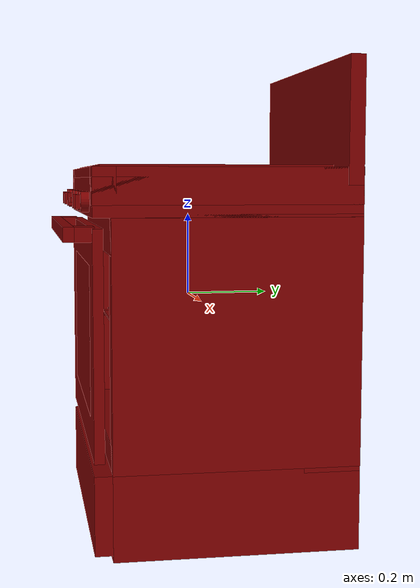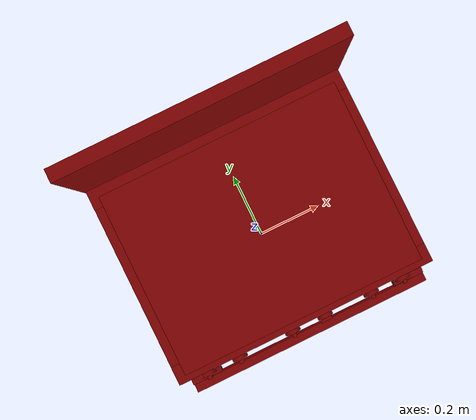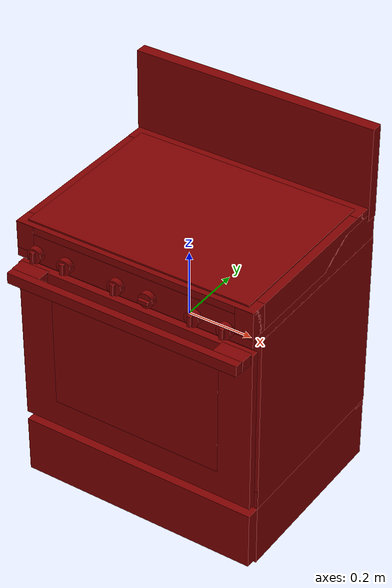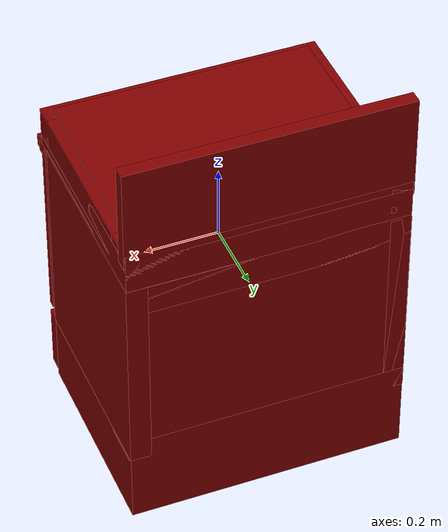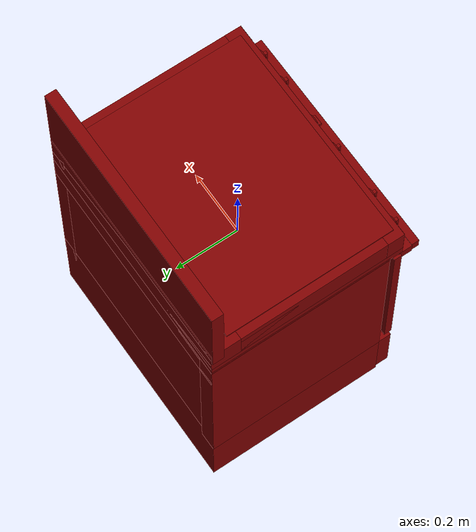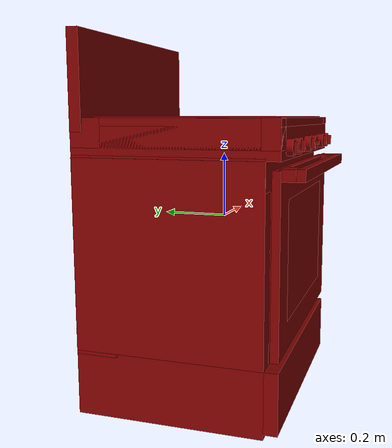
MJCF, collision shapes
<?xml version='1.0' encoding='UTF-8'?>
<mujoco model="model">
  <option timestep="0.002" gravity="0.0 0.0 -9.81"/>
  <compiler angle="radian"/>
  <asset>
    <mesh file="visuals/door.obj" name="door_vis"/>
    <mesh file="visuals/door_Clear.obj" name="door_Clear_vis"/>
    <mesh file="visuals/knob_front_left.obj" name="knob_front_left_vis"/>
    <mesh file="visuals/knob_front_right.obj" name="knob_front_right_vis"/>
    <mesh file="visuals/knob_rear_left.obj" name="knob_rear_left_vis"/>
    <mesh file="visuals/knob_rear_right.obj" name="knob_rear_right_vis"/>
    <mesh file="visuals/knob_temp.obj" name="knob_temp_vis"/>
    <mesh file="visuals/knob_time.obj" name="knob_time_vis"/>
    <mesh file="visuals/rack0.obj" name="rack0_vis"/>
    <mesh file="visuals/Body001.obj" name="Body001_vis"/>
    <texture file="visuals/T_BC001.png" name="Body001_material" type="2d"/>
    <material name="Body001_material" rgba="1 1 1 1.0" texture="Body001_material" shininess="0.2512328028678894" specular="2"/>
    <texture file="visuals/T_BC001.png" name="door_material" type="2d"/>
    <material name="door_material" rgba="1 1 1 1.0" texture="door_material" shininess="0.2512328028678894" specular="2"/>
    <texture file="visuals/T_BC001.png" name="door_Clear_material" type="2d"/>
    <material name="door_Clear_material" rgba="1 1 1 0.5" texture="door_Clear_material" shininess="0.2512328028678894" specular="0.3103448502657381"/>
    <texture file="visuals/T_BC001.png" name="knob_front_left_material" type="2d"/>
    <material name="knob_front_left_material" rgba="1 1 1 1.0" texture="knob_front_left_material" shininess="0.2512328028678894" specular="0.3103448502657381"/>
    <texture file="visuals/T_BC001.png" name="knob_front_right_material" type="2d"/>
    <material name="knob_front_right_material" rgba="1 1 1 1.0" texture="knob_front_right_material" shininess="0.2512328028678894" specular="0.3103448502657381"/>
    <texture file="visuals/T_BC001.png" name="knob_rear_left_material" type="2d"/>
    <material name="knob_rear_left_material" rgba="1 1 1 1.0" texture="knob_rear_left_material" shininess="0.2512328028678894" specular="0.3103448502657381"/>
    <texture file="visuals/T_BC001.png" name="knob_rear_right_material" type="2d"/>
    <material name="knob_rear_right_material" rgba="1 1 1 1.0" texture="knob_rear_right_material" shininess="0.2512328028678894" specular="0.3103448502657381"/>
    <texture file="visuals/T_BC001.png" name="knob_temp_material" type="2d"/>
    <material name="knob_temp_material" rgba="1 1 1 1.0" texture="knob_temp_material" shininess="0.2512328028678894" specular="0.3103448502657381"/>
    <texture file="visuals/T_BC001.png" name="knob_time_material" type="2d"/>
    <material name="knob_time_material" rgba="1 1 1 1.0" texture="knob_time_material" shininess="0.2512328028678894" specular="0.3103448502657381"/>
    <texture file="visuals/T_BC001.png" name="rack0_material" type="2d"/>
    <material name="rack0_material" rgba="1 1 1 1.0" texture="rack0_material" shininess="0.2512328028678894" specular="2"/>
  </asset>
  <default>
    <default class="visual">
      <geom conaffinity="0" contype="0" group="1" type="mesh"/>
    </default>
    <default class="collision">
      <geom group="0" rgba="0.5 0 0 0.5"/>
    </default>
    <default class="spawn">
      <geom group="0" rgba="1 1 1 0.5" contype="0" conaffinity="0"/>
      <site group="0" rgba="1 1 1 0.5"/>
    </default>
    <default class="region">
      <geom group="1" conaffinity="0" contype="0" rgba="0 1 0 0"/>
    </default>
  </default>
  <worldbody>
    <body>
      <body name="object">
        <geom mesh="Body001_vis" type="mesh" solimp="0.998 0.998 0.001" solref="0.001 1" friction="0.95 0.3 0.1" class="visual" material="Body001_material"/>
        <geom class="collision" type="box" pos="0.34396031498908997 0.0355360172688961 0.2718707025051117" size="0.027703871950507164 0.30218106508255005 0.041509922593832016" quat="1.0 0.0 0.0 0.0"/>
        <geom class="collision" type="box" pos="6.924683049192026e-08 -0.24004031717777252 0.2720169723033905" size="0.3716641366481781 0.02598430961370468 0.041656188666820526" quat="1.0 0.0 0.0 0.0"/>
        <geom class="collision" type="box" pos="-0.3437274098396301 0.0355360172688961 0.2718707025051117" size="0.027703871950507164 0.30218106508255005 0.041509922593832016" quat="1.0 0.0 0.0 0.0"/>
        <geom class="collision" type="box" pos="6.924683049192026e-08 0.29171818494796753 0.2720169723033905" size="0.3716641366481781 0.04599890112876892 0.041656188666820526" quat="1.0 0.0 0.0 0.0"/>
        <geom class="collision" type="box" pos="0.0003474582335911691 0.012167987413704395 0.3158510625362396" size="0.34643083810806274 0.2607969343662262 0.0024704155512154102" quat="1.0 0.0 0.0 0.0"/>
        <geom class="collision" type="box" pos="-0.000187981640920043 0.3183165192604065 0.4163304269313812" size="0.3753405511379242 0.017788369208574295 0.14292873442173004" quat="1.0 0.0 0.0 0.0"/>
        <geom class="collision" type="box" pos="-0.34461894631385803 0.0556202195584774 -0.08037658780813217" size="0.0282307006418705 0.28209689259529114 0.28328806161880493" quat="1.0 0.0 0.0 0.0"/>
        <geom class="collision" type="box" pos="0.3448219299316406 0.0556202195584774 -0.08037658780813217" size="0.028214074671268463 0.28209689259529114 0.28328806161880493" quat="1.0 0.0 0.0 0.0"/>
        <geom class="collision" type="box" pos="5.624315235763788e-08 0.0556202158331871 -0.4323696494102478" size="0.3716641664505005 0.28209689259529114 0.12749764323234558" quat="1.0 0.0 0.0 0.0"/>
        <geom class="collision" type="box" pos="5.624315235763788e-08 -0.24676084518432617 -0.45345813035964966" size="0.3716641664505005 0.020284172147512436 0.09009308367967606" quat="1.0 0.0 0.0 0.0"/>
        <geom class="collision" type="box" pos="5.624315235763788e-08 0.0556202158331871 0.16500025987625122" size="0.3716641664505005 0.28209689259529114 0.04473291337490082" quat="1.0 0.0 0.0 0.0"/>
        <geom class="collision" type="box" pos="5.624315235763788e-08 0.2721762955188751 -0.08635221421718597" size="0.3716641664505005 0.06554075330495834 0.28845295310020447" quat="1.0 0.0 0.0 0.0"/>
        <geom class="collision" type="box" pos="0.3241608142852783 0.0020631689112633467 -0.09308252483606339" size="0.027589945122599602 0.17868469655513763 0.0013510260032489896" quat="1.0 0.0 0.0 0.0"/>
        <geom class="collision" type="box" pos="0.33909159898757935 0.0020631689112633467 -0.0829729288816452" size="0.027589945122599602 0.17868469655513763 0.011460619047284126" quat="1.0 0.0 0.0 0.0"/>
        <geom class="collision" type="box" pos="0.3266005516052246 0.0020631689112633467 -0.0743316262960434" size="0.027589945122599602 0.17868469655513763 0.003063765587285161" quat="1.0 0.0 0.0 0.0"/>
        <geom class="collision" type="box" pos="-0.3259783387184143 0.0020631689112633467 -0.0931297242641449" size="0.027589945122599602 0.17868469655513763 0.0013038265751674771" quat="1.0 0.0 0.0 0.0"/>
        <geom class="collision" type="box" pos="-0.3385297358036041 0.0020631689112633467 -0.0829729288816452" size="0.027589945122599602 0.17868469655513763 0.011460619047284126" quat="1.0 0.0 0.0 0.0"/>
        <geom class="collision" type="box" pos="-0.3271794021129608 0.0020631689112633467 -0.0743316262960434" size="0.027589945122599602 0.17868469655513763 0.003063765587285161" quat="1.0 0.0 0.0 0.0"/>
        <geom class="collision" type="box" pos="0.00011644249752862379 0.0355360172688961 0.24712295830249786" size="0.37154775857925415 0.30218106508255005 0.04382285848259926" quat="1.0 0.0 0.0 0.0"/>
        <body name="door">
          <joint axis="1.0 0.0 0.0" pos="3.5188986657885835e-05 -0.2670935094356537 -0.35669413208961487" limited="true" name="door_joint" range="0.0 1.5707963267948966" type="hinge" damping="1" frictionloss="1" armature=".01" stiffness="0.05"/>
          <geom mesh="door_vis" type="mesh" solimp="0.998 0.998 0.001" solref="0.001 1" friction="0.95 0.3 0.1" class="visual" material="door_material"/>
          <geom class="collision" type="box" pos="0.32111576199531555 -0.28261643648147583 0.16753073036670685" size="0.04439320042729378 0.02187482826411724 0.016213400289416313" quat="1.0 0.0 0.0 0.0"/>
          <geom class="collision" type="box" pos="-0.32054615020751953 -0.28261643648147583 0.16748468577861786" size="0.04469047859311104 0.021874846890568733 0.016167376190423965" quat="1.0 0.0 0.0 0.0"/>
          <geom class="collision" type="box" pos="9.32859256863594e-06 -0.3168168067932129 0.1678217351436615" size="0.36288729310035706 0.012113513424992561 0.016504453495144844" quat="1.0 0.0 0.0 0.0" name="door_handle_main"/>
          <geom class="collision" type="box" pos="8.568167686462402e-08 -0.25500014424324036 -0.07753480970859528" size="0.37166351079940796 0.011776586063206196 0.25787848234176636" quat="1.0 0.0 0.0 0.0" name="door_main"/>
          <geom class="collision" type="box" pos="0.0010643453570082784 -0.26509907841682434 -0.07913118600845337" size="0.2673666477203369 0.0017736083827912807 0.17327038943767548" quat="1.0 0.0 0.0 0.0"/>
          <body name="door_Clear">
            <geom mesh="door_Clear_vis" type="mesh" solimp="0.998 0.998 0.001" solref="0.001 1" friction="0.95 0.3 0.1" class="visual" material="door_Clear_material"/>
            <geom class="collision" type="box" pos="0.0010643453570082784 -0.26509907841682434 -0.07913118600845337" size="0.2673666477203369 0.0017736083827912807 0.17327038943767548" quat="1.0 0.0 0.0 0.0"/>
          </body>
        </body>
        <body name="knob_front_left">
          <joint axis="0.0 -1.0 0.0" pos="-0.3026251792907715 -0.28208956122398376 0.2365647554397583" limited="true" name="knob_front_left_joint" range="0.0 3.141592653589793" type="hinge" damping="0.05" armature="1" frictionloss="0.75"/>
          <geom mesh="knob_front_left_vis" type="mesh" solimp="0.998 0.998 0.001" solref="0.001 1" friction="0.95 0.3 0.1" class="visual" material="knob_front_left_material"/>
          <geom class="collision" type="cylinder" pos="-0.3024694323539734 -0.27740800380706787 0.23673368990421295" size="0.022574562579393387 0.00932288821786642" quat="0.7071068286895752 0.7071067690849304 0.0 0.0" friction="100 0.5 0.01"/>
          <geom class="collision" type="box" pos="-0.30265775322914124 -0.29158005118370056 0.23677793145179749" size="0.005231413524597883 0.006307623349130154 0.015703316777944565" quat="1.0 0.0 0.0 0.0" name="knob_front_left_main" friction="100 0.5 0.01"/>
        </body>
        <body name="knob_front_right">
          <joint axis="0.0 -1.0 0.0" pos="0.2943209409713745 -0.28208956122398376 0.2365647554397583" limited="true" name="knob_front_right_joint" range="0.0 3.141592653589793" type="hinge" damping="0.05" armature="1" frictionloss="0.75"/>
          <geom mesh="knob_front_right_vis" type="mesh" solimp="0.998 0.998 0.001" solref="0.001 1" friction="0.95 0.3 0.1" class="visual" material="knob_front_right_material"/>
          <geom class="collision" type="cylinder" pos="0.2946217656135559 -0.2774079740047455 0.23673368990421295" size="0.022574562579393387 0.00932288821786642" quat="0.7071068286895752 0.7071067690849304 0.0 0.0" friction="100 0.5 0.01"/>
          <geom class="collision" type="box" pos="0.2944334149360657 -0.29158005118370056 0.23677793145179749" size="0.005231413524597883 0.006307623349130154 0.015703316777944565" quat="1.0 0.0 0.0 0.0" name="knob_front_right_main" friction="100 0.5 0.01"/>
        </body>
        <body name="knob_rear_left">
          <joint axis="0.0 -1.0 0.0" pos="-0.206198588013649 -0.28208956122398376 0.2365647554397583" limited="true" name="knob_rear_left_joint" range="0.0 3.141592653589793" type="hinge" damping="0.05" armature="1" frictionloss="0.75"/>
          <geom mesh="knob_rear_left_vis" type="mesh" solimp="0.998 0.998 0.001" solref="0.001 1" friction="0.95 0.3 0.1" class="visual" material="knob_rear_left_material"/>
          <geom class="collision" type="cylinder" pos="-0.20595243573188782 -0.2774079740047455 0.23673368990421295" size="0.022574562579393387 0.00932288821786642" quat="0.7071068286895752 0.7071067690849304 0.0 0.0" friction="100 0.5 0.01"/>
          <geom class="collision" type="box" pos="-0.20614075660705566 -0.29158005118370056 0.23677793145179749" size="0.005231413524597883 0.006307623349130154 0.015703316777944565" quat="1.0 0.0 0.0 0.0" name="knob_rear_left_main" friction="100 0.5 0.01"/>
        </body>
        <body name="knob_rear_right">
          <joint axis="0.0 -1.0 0.0" pos="0.19744689762592316 -0.28208956122398376 0.2365647554397583" limited="true" name="knob_rear_right_joint" range="0.0 3.141592653589793" type="hinge" damping="0.05" armature="1" frictionloss="0.75"/>
          <geom mesh="knob_rear_right_vis" type="mesh" solimp="0.998 0.998 0.001" solref="0.001 1" friction="0.95 0.3 0.1" class="visual" material="knob_rear_right_material"/>
          <geom class="collision" type="cylinder" pos="0.19776120781898499 -0.2774079740047455 0.23673368990421295" size="0.022574562579393387 0.00932288821786642" quat="0.7071068286895752 0.7071067690849304 0.0 0.0" friction="100 0.5 0.01"/>
          <geom class="collision" type="box" pos="0.19757288694381714 -0.29158005118370056 0.23677793145179749" size="0.005231413524597883 0.006307623349130154 0.015703316777944565" quat="1.0 0.0 0.0 0.0" name="knob_rear_right_main" friction="100 0.5 0.01"/>
        </body>
        <body name="knob_temp">
          <joint axis="0.0 1.0 0.0" pos="0.05543176457285881 -0.28208956122398376 0.2368582934141159" limited="true" name="knob_temp_joint" range="0.0 3.141592653589793" type="hinge" damping="0.05" frictionloss="0.75" armature="1"/>
          <geom mesh="knob_temp_vis" type="mesh" solimp="0.998 0.998 0.001" solref="0.001 1" friction="0.95 0.3 0.1" class="visual" material="knob_temp_material"/>
          <geom class="collision" type="cylinder" pos="0.055857740342617035 -0.2774079740047455 0.23673368990421295" size="0.022574562579393387 0.00932288821786642" quat="0.7071068286895752 0.7071067690849304 0.0 0.0" friction="100 0.5 0.01"/>
          <geom class="collision" type="box" pos="0.055412549525499344 -0.29158005118370056 0.23677793145179749" size="0.015703316777944565 0.006307623349130154 0.005231414455920458" quat="1.0 0.0 0.0 0.0" name="knob_temp_main" friction="100 0.5 0.01"/>
        </body>
        <body name="knob_time">
          <joint axis="0.0 1.0 0.0" pos="-0.043234262615442276 -0.28208956122398376 0.2365647554397583" limited="true" name="knob_time_joint" range="0.0 4.014257279586958" type="hinge" damping="0.05" frictionloss="0.75" armature="1"/>
          <geom mesh="knob_time_vis" type="mesh" solimp="0.998 0.998 0.001" solref="0.001 1" friction="0.95 0.3 0.1" class="visual" material="knob_time_material"/>
          <geom class="collision" type="cylinder" pos="-0.04319572448730469 -0.2774079740047455 0.23673368990421295" size="0.022574562579393387 0.00932288821786642" quat="0.7071068286895752 0.7071067690849304 0.0 0.0" friction="100 0.5 0.01"/>
          <geom class="collision" type="box" pos="-0.043384045362472534 -0.29158005118370056 0.23677793145179749" size="0.005231413524597883 0.006307623349130154 0.015703316777944565" quat="1.0 0.0 0.0 0.0" name="knob_time_main" friction="100 0.5 0.01"/>
        </body>
        <body name="rack0">
          <geom class="region" name="reg_rack0" type="box" pos="0.000891372561454773 0.002782590687274933 0.020921193063259125" size="0.2859694937467575 0.19056086784601212 0.09597245401144028"/>
          <joint axis="0.0 -1.0 0.0" pos="-0.0013591073220595717 0.0018712973687797785 -0.08152860403060913" limited="true" name="rack0_joint" range="0.0 0.33" type="slide" damping="1" frictionloss="1" armature=".01" stiffness="0.05"/>
          <geom mesh="rack0_vis" type="mesh" solimp="0.998 0.998 0.001" solref="0.001 1" friction="0.95 0.3 0.1" class="visual" material="rack0_material"/>
          <geom class="collision" type="box" pos="0.0013725876342505217 0.002390923909842968 -0.0793023556470871" size="0.2908157706260681 0.19227856397628784 0.0032185327727347612" quat="1.0 0.0 0.0 0.0"/>
          <geom class="collision" type="box" pos="0.2982712984085083 0.002390923909842968 -0.0821845680475235" size="0.012118300423026085 0.19227856397628784 0.0032185327727347612" quat="0.9565491080284119 0.0 0.2915712893009186 0.0"/>
          <geom class="collision" type="box" pos="-0.2965599298477173 0.002390923909842968 -0.0821845680475235" size="0.012118300423026085 0.19227856397628784 0.0032185327727347612" quat="0.9565491080284119 0.0 -0.2915712893009186 0.0"/>
        </body>
        <site type="cylinder" rgba="0.3 0.4 1 0.5" size="0.03611009567975998 0.005172248464077711" pos="-0.16648337244987488 -0.08395028114318848 0.3046778738498688" name="burner_on_front_left"/>
        <site type="cylinder" rgba="0.3 0.4 1 0.5" size="0.043951887637376785 0.005172248464077711" pos="0.16671663522720337 -0.0839512050151825 0.3046778738498688" name="burner_on_front_right"/>
        <site type="cylinder" rgba="0.3 0.4 1 0.5" size="0.03423852100968361 0.005172248464077711" pos="-0.16648519039154053 0.1084383875131607 0.3046778738498688" name="burner_on_rear_left"/>
        <site type="cylinder" rgba="0.3 0.4 1 0.5" size="0.04102875292301178 0.005172248464077711" pos="0.16671663522720337 0.10843902826309204 0.3046778738498688" name="burner_on_rear_right"/>
        <geom class="region" name="reg_int" type="box" pos="-0.0020607411861419678 -0.009656988084316254 -0.09257029742002487" size="0.29104713892936707 0.21386875754594803 0.20946394449472427"/>
        <site type="cylinder" rgba="0.5 0 0 0" size="0.04102875292301178 4.999999873689376e-05" pos="0.16671662032604218 0.10843902081251144 0.317869633436203" name="burner_rear_right_place_site"/>
        <site type="cylinder" rgba="0.5 0 0 0" size="0.03423852100968361 4.999999873689376e-05" pos="-0.16648519039154053 0.1084383875131607 0.317869633436203" name="burner_rear_left_place_site"/>
        <site type="cylinder" rgba="0.5 0 0 0" size="0.04395187646150589 4.999999873689376e-05" pos="0.16671662032604218 -0.0839511975646019 0.317869633436203" name="burner_front_right_place_site"/>
        <site type="cylinder" rgba="0.5 0 0 0" size="0.03611009567975998 4.999999873689376e-05" pos="-0.16648337244987488 -0.08395028114318848 0.317869633436203" name="burner_front_left_place_site"/>
        <geom class="region" name="reg_main" type="box" pos="0.0 0.035929128527641296 -0.13458465039730072" size="0.37732453441619873 0.3040216097831726 0.4262825975418091"/>
      </body>
    </body>
  </worldbody>
  <actuator>
    <motor name="door_joint_actuator" joint="door_joint" gear="50"/>
    <motor name="knob_front_left_joint_actuator" joint="knob_front_left_joint" gear="50"/>
    <motor name="knob_front_right_joint_actuator" joint="knob_front_right_joint" gear="50"/>
    <motor name="knob_rear_left_joint_actuator" joint="knob_rear_left_joint" gear="50"/>
    <motor name="knob_rear_right_joint_actuator" joint="knob_rear_right_joint" gear="50"/>
    <motor name="knob_temp_joint_actuator" joint="knob_temp_joint" gear="50"/>
    <motor name="knob_time_joint_actuator" joint="knob_time_joint" gear="50"/>
    <motor name="rack0_joint_actuator" joint="rack0_joint" gear="50"/>
  </actuator>
</mujoco>
